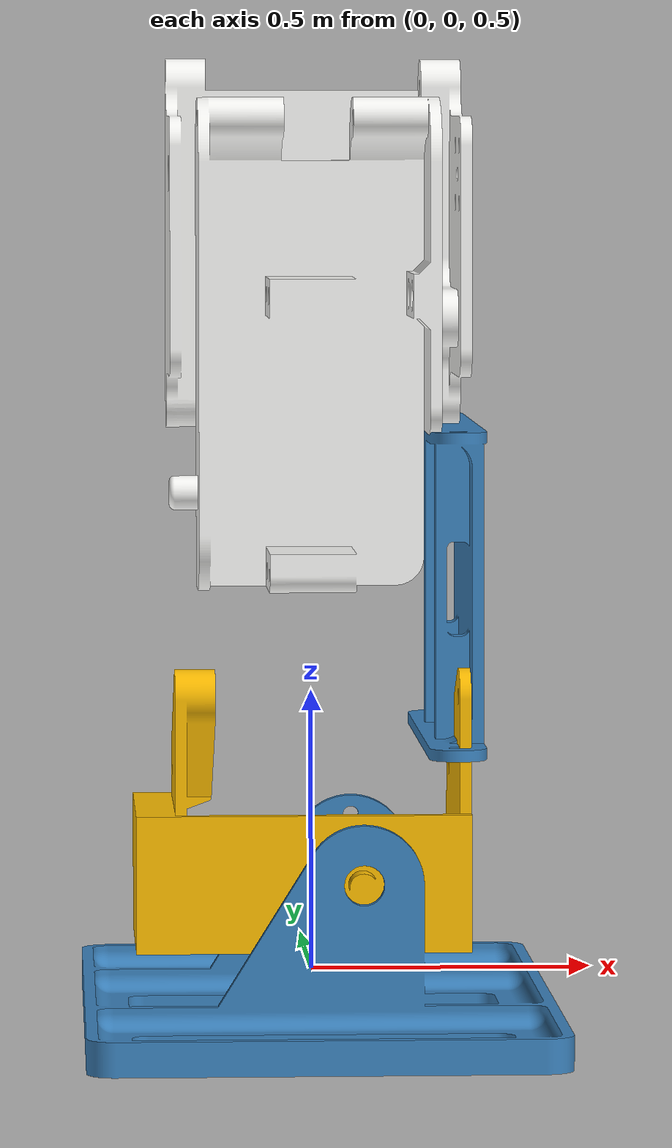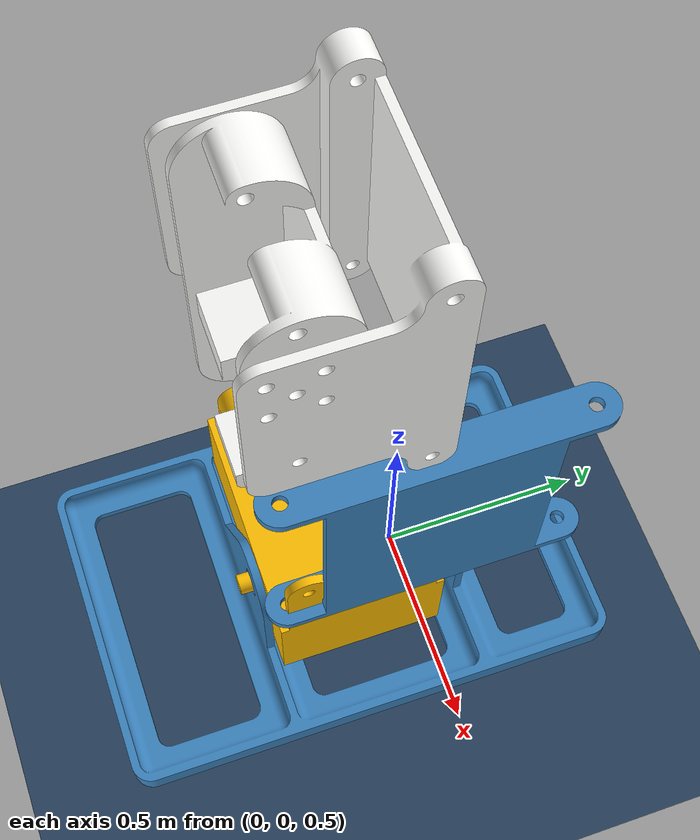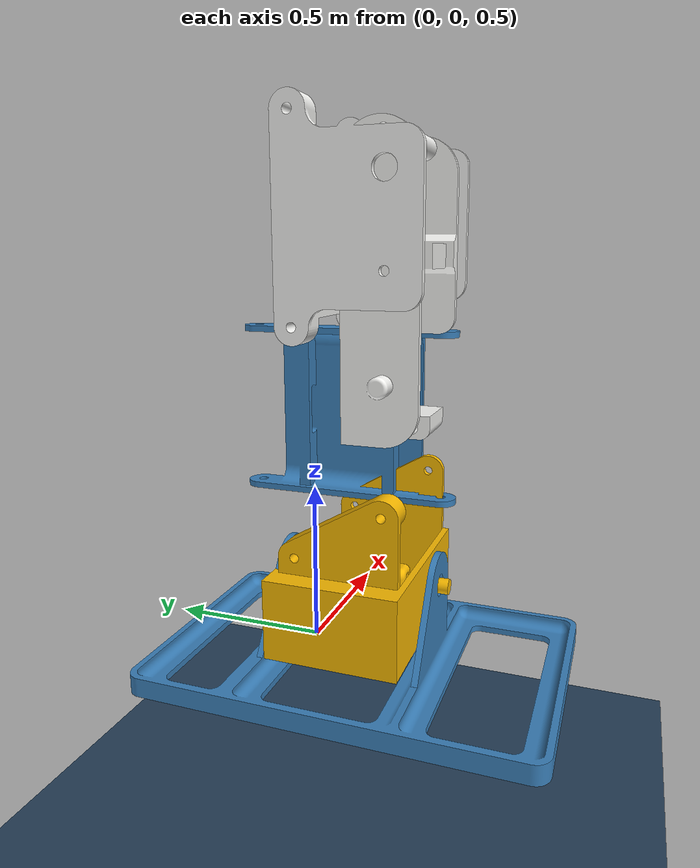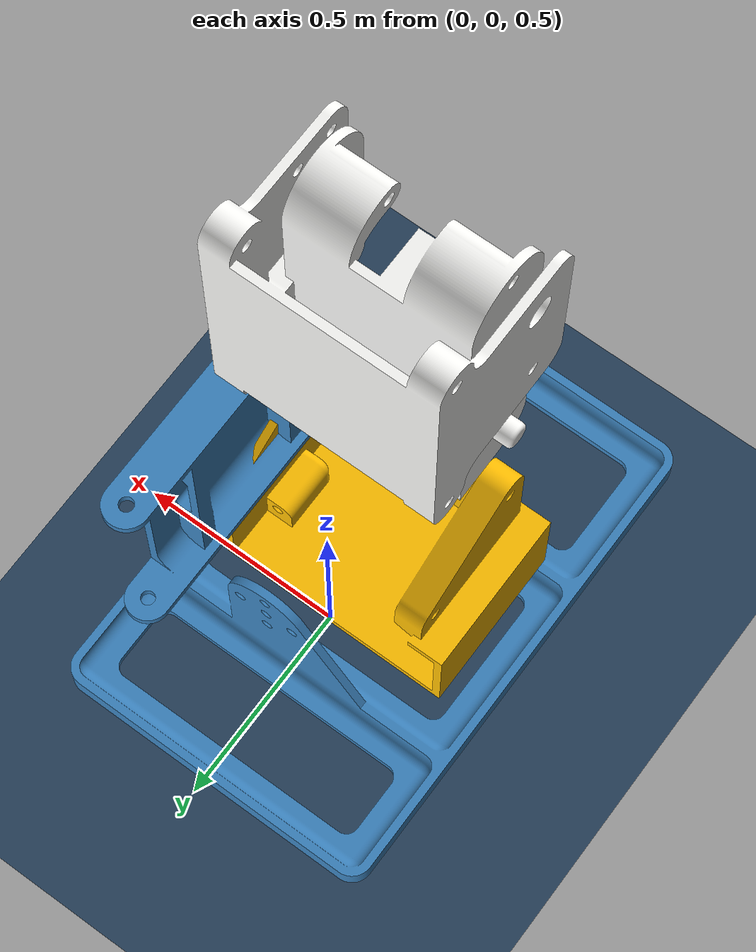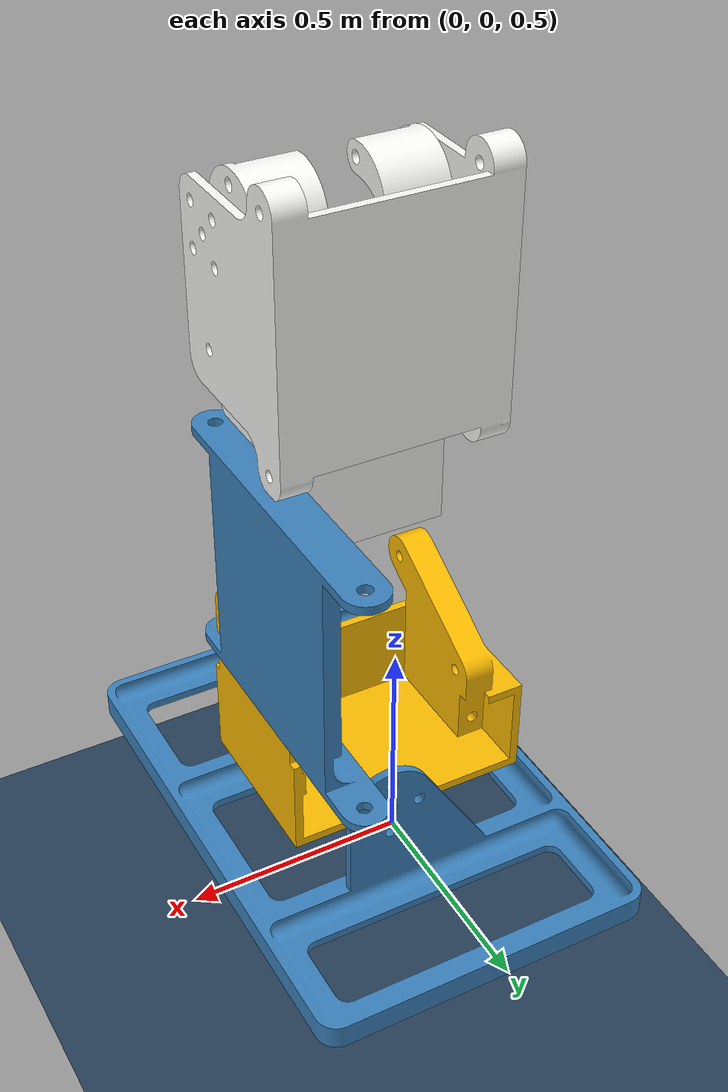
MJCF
<mujoco model="Kayra">
  <option gravity="0 0 -9.81"/>
   <compiler angle="radian"/>

<default>
  <mesh scale="0.01 0.01 0.01"/>
  <geom type="mesh" solref="0.005 1"/>
  <position kp="21.1" ctrlrange="-3.141592 3.141592" forcerange="-5 5"/>
</default>

  <asset>
    <texture name="grid" type="2d" builtin="checker" width="512" height="512" rgb1=".1 .2 .3" rgb2=".2 .3 .4"/>
    <material name="blue" rgba="0.23 0.51 0.74 1"/>
    <material name="yellow" rgba="0.99 0.74 0.0 1"/>
    <material name="white" rgba="0.98 0.98 0.97 1"/>
    <material name="grid" texture="grid" texrepeat="1 1" texuniform="true" reflectance=".2"/>
    <mesh name="1R_foot" file="../STL/1R_foot-Body.stl"/>
    <mesh name="2R_footJoint" file="../STL/2R_footJoint_bearing-Body.stl"/>
    <mesh name="3BR_calf" file="../STL/3BR_calf-Body.stl"/>
    <mesh name="3FU_shin" file="../STL/3FU_shin-Body.stl"/>
    <mesh name="4R_knee" file="../STL/4R_knee-Body.stl"/>
	<mesh name="5R_hipjoint_lower" file="../STL/5R_hipjoint_lower-Body.stl"/>
    <mesh name="5R_hipjoint_upper" file="../STL/5R_hipjoint_upper_bearing-Body.stl"/>
  </asset>

  <worldbody>
   <camera name="follow" pos="-2.0 2.0 3" xyaxes="-1.0 -1 0 1.0 0 1" mode="trackcom"/>
    <!-- light pos="0 0 1" dir="0 0 -1" diffuse="0.1 0.8 0.8"/-->
    <light directional="true" pos="-0.5 0.5 3" dir="0 0 -1" />
    <!-- geom name="floor" size="1 1 0.05" rgba="1.0 0.0 0.0 1.0" type="plane"/-->
    <!-- geom name="floor" pos="0 0 -0.1" size="0 0 0.1" type="plane" rgba="0.4 0.4 0.4 1.0"/-->
    <geom name="floor" size="0 0 .05" type="plane" material="grid" condim="3"/>

    <body name="4R_Link" pos="0 0 1.8" euler= "-0.0 0.0 0.0">
        <joint type="free"/>

        <inertial pos="0 0 0.1" mass="0.10" diaginertia="0.005 0.005 0.005"/>
        <geom mesh="4R_knee" type="mesh" material="white"/>

        <body name="3BR_Link" pos="0 -0.17 -0.225" euler="1.57 0 -1.57">
             <joint name="3BR_Joint" axis="0 1 0" pos="-0.10 0.0 0.14"/>

            <inertial pos="0 0 0" mass="0.10" diaginertia="0.005 0.005 0.005"/>
            <geom mesh="3BR_calf" type="mesh" euler="0 0 0" pos="0.0 0.0 0.0" material="white"/>

			<body name="2R_Link" pos="1.0 -0.3 0.2" euler= "0 -1.57 1.57">
				<joint name="2R_Joint" axis="1 0 0" pos="0.23 0.05 0.45"/>

				<inertial pos="0 0 0.1" mass="0.05" diaginertia="0.005 0.005 0.005"/>
				<geom mesh="2R_footJoint" type="mesh" material="yellow"/>

				<body name="3FU_Link" pos="0.3 0.35 0.62" euler="-1.57 0 0">
					<joint name="3FU_Joint" axis="1 0 0" pos="-0.03 0.3 -0.03"/>

					<inertial pos="0 0 0" mass="0.05" diaginertia="0.005 0.005 0.005"/>
					<geom mesh="3FU_shin" type="mesh" euler="0 0 0" pos="0.0 0.0 0.0" material="blue"/>
				</body>

				<body name="1R_Link" pos="0.3 0.2 -0.15" euler="0 0 0.0">
					<joint name="1R_Joint" axis="0 1 0" pos="0.08 -0.03 0.27"/>
					<inertial pos="0 0 0" mass="0.05" diaginertia="0.005 0.005 0.005"/>
					<geom mesh="1R_foot" type="mesh" euler="0 0 0" pos="0.0 0.0 0.0" material="blue"/>
				</body>
			</body>
        </body>
    </body>

  </worldbody>

    <equality>
        <connect name="lowerRightLeg_kinematic_link" active="true" body1="4R_Link" body2="3FU_Link" anchor="0.25 -0.05 -0.26"/>
    </equality >

	<actuator>
		<position name="Right Calf 3BR" joint="3BR_Joint"/>
		<position name="Right Foot 1R" joint="1R_Joint"/>
	</actuator>

</mujoco>
